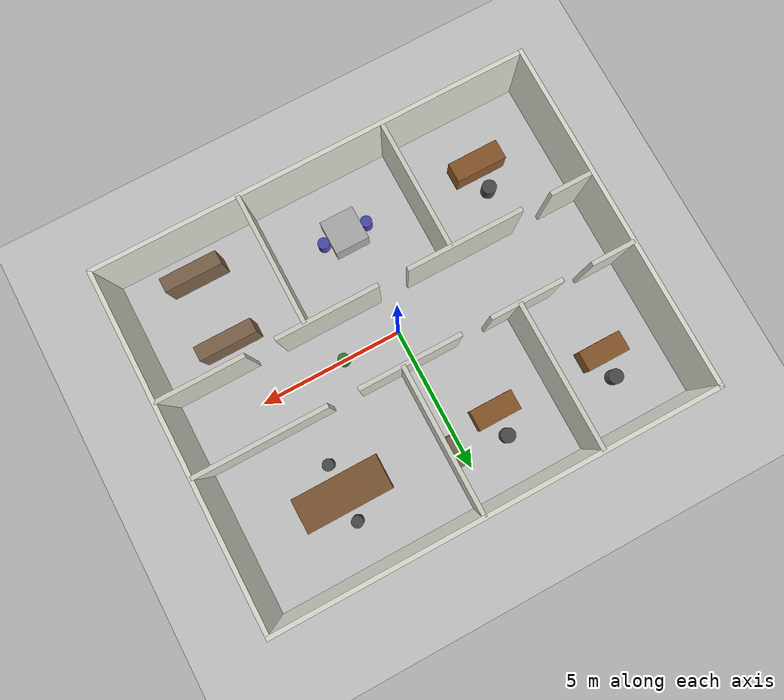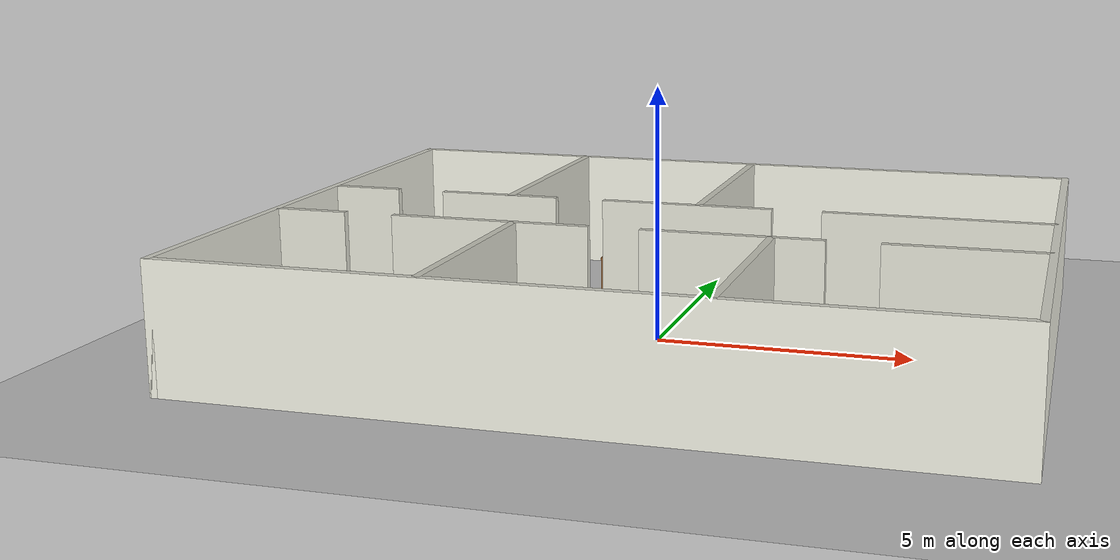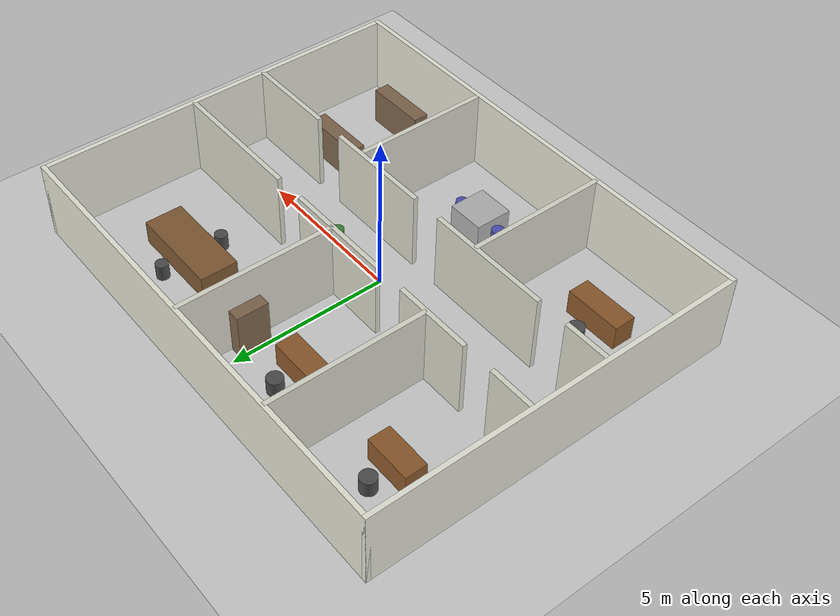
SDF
<?xml version="1.0"?>
<sdf version="1.6">
  <world name="office">

    <!-- Plugins -->
    <plugin filename="gz-sim-physics-system"
            name="gz::sim::systems::Physics"/>
    <plugin filename="gz-sim-user-commands-system"
            name="gz::sim::systems::UserCommands"/>
    <plugin filename="gz-sim-scene-broadcaster-system"
            name="gz::sim::systems::SceneBroadcaster"/>
    <plugin filename="gz-sim-sensors-system"
            name="gz::sim::systems::Sensors">
      <render_engine>ogre2</render_engine>
    </plugin>
    <plugin filename="gz-sim-imu-system"
            name="gz::sim::systems::Imu"/>

    <physics name="1ms" type="ode">
      <max_step_size>0.003</max_step_size>
      <real_time_factor>1.0</real_time_factor>
    </physics>

    <!-- Lighting -->
    <light name="sun" type="directional">
      <cast_shadows>false</cast_shadows>
      <pose>0 0 10 0 0 0</pose>
      <diffuse>0.9 0.9 0.9 1</diffuse>
      <specular>0.3 0.3 0.3 1</specular>
      <attenuation>
        <range>1000</range>
        <constant>0.9</constant>
        <linear>0.01</linear>
        <quadratic>0.001</quadratic>
      </attenuation>
      <direction>-0.5 0.1 -0.9</direction>
    </light>

    <!-- Ground plane -->
    <model name="ground_plane">
      <static>true</static>
      <link name="link">
        <collision name="collision">
          <geometry>
            <plane>
              <normal>0 0 1</normal>
              <size>100 100</size>
            </plane>
          </geometry>
        </collision>
        <visual name="visual">
          <geometry>
            <plane>
              <normal>0 0 1</normal>
              <size>100 100</size>
            </plane>
          </geometry>
          <material>
            <ambient>0.8 0.8 0.8 1</ambient>
            <diffuse>0.8 0.8 0.8 1</diffuse>
          </material>
        </visual>
      </link>
    </model>

    <scene>
      <shadows>false</shadows>
      <ambient>0.4 0.4 0.4 1</ambient>
    </scene>

    <!-- Walls model — pose offsets all child links by (-7.5, -5.75) -->
    <model name="office_walls">
      <static>true</static>
      <pose>-7.5 -5.75 0 0 0 0</pose>

      <!-- ===== OUTER WALLS ===== -->

      <!-- South wall (y=0 in model frame) -->
      <link name="wall_south">
        <pose>7.5 0 1.25 0 0 0</pose>
        <collision name="collision">
          <geometry><box><size>15.15 0.15 2.5</size></box></geometry>
        </collision>
        <visual name="visual">
          <geometry><box><size>15.15 0.15 2.5</size></box></geometry>
          <material><ambient>0.9 0.9 0.85 1</ambient><diffuse>0.9 0.9 0.85 1</diffuse></material>
        </visual>
      </link>

      <!-- North wall (y=12) -->
      <link name="wall_north">
        <pose>7.5 12 1.25 0 0 0</pose>
        <collision name="collision">
          <geometry><box><size>15.15 0.15 2.5</size></box></geometry>
        </collision>
        <visual name="visual">
          <geometry><box><size>15.15 0.15 2.5</size></box></geometry>
          <material><ambient>0.9 0.9 0.85 1</ambient><diffuse>0.9 0.9 0.85 1</diffuse></material>
        </visual>
      </link>

      <!-- West wall (x=0) -->
      <link name="wall_west">
        <pose>0 6 1.25 0 0 0</pose>
        <collision name="collision">
          <geometry><box><size>0.15 12.15 2.5</size></box></geometry>
        </collision>
        <visual name="visual">
          <geometry><box><size>0.15 12.15 2.5</size></box></geometry>
          <material><ambient>0.9 0.9 0.85 1</ambient><diffuse>0.9 0.9 0.85 1</diffuse></material>
        </visual>
      </link>

      <!-- East wall (x=15) -->
      <link name="wall_east">
        <pose>15 6 1.25 0 0 0</pose>
        <collision name="collision">
          <geometry><box><size>0.15 12.15 2.5</size></box></geometry>
        </collision>
        <visual name="visual">
          <geometry><box><size>0.15 12.15 2.5</size></box></geometry>
          <material><ambient>0.9 0.9 0.85 1</ambient><diffuse>0.9 0.9 0.85 1</diffuse></material>
        </visual>
      </link>

      <!-- ===== CORRIDOR WALLS (horizontal dividers) ===== -->

      <!-- South corridor wall (y=4.5) — with door gaps -->
      <link name="corridor_south_seg1">
        <pose>0.75 4.5 1.25 0 0 0</pose>
        <collision name="collision">
          <geometry><box><size>1.5 0.15 2.5</size></box></geometry>
        </collision>
        <visual name="visual">
          <geometry><box><size>1.5 0.15 2.5</size></box></geometry>
          <material><ambient>0.85 0.85 0.8 1</ambient><diffuse>0.85 0.85 0.8 1</diffuse></material>
        </visual>
      </link>
      <link name="corridor_south_seg2">
        <pose>4.5 4.5 1.25 0 0 0</pose>
        <collision name="collision">
          <geometry><box><size>4.0 0.15 2.5</size></box></geometry>
        </collision>
        <visual name="visual">
          <geometry><box><size>4.0 0.15 2.5</size></box></geometry>
          <material><ambient>0.85 0.85 0.8 1</ambient><diffuse>0.85 0.85 0.8 1</diffuse></material>
        </visual>
      </link>
      <link name="corridor_south_seg3">
        <pose>9.25 4.5 1.25 0 0 0</pose>
        <collision name="collision">
          <geometry><box><size>3.5 0.15 2.5</size></box></geometry>
        </collision>
        <visual name="visual">
          <geometry><box><size>3.5 0.15 2.5</size></box></geometry>
          <material><ambient>0.85 0.85 0.8 1</ambient><diffuse>0.85 0.85 0.8 1</diffuse></material>
        </visual>
      </link>
      <link name="corridor_south_seg4">
        <pose>13.5 4.5 1.25 0 0 0</pose>
        <collision name="collision">
          <geometry><box><size>3.0 0.15 2.5</size></box></geometry>
        </collision>
        <visual name="visual">
          <geometry><box><size>3.0 0.15 2.5</size></box></geometry>
          <material><ambient>0.85 0.85 0.8 1</ambient><diffuse>0.85 0.85 0.8 1</diffuse></material>
        </visual>
      </link>

      <!-- North corridor wall (y=7) — with door gaps -->
      <link name="corridor_north_seg1">
        <pose>0.75 7 1.25 0 0 0</pose>
        <collision name="collision">
          <geometry><box><size>1.5 0.15 2.5</size></box></geometry>
        </collision>
        <visual name="visual">
          <geometry><box><size>1.5 0.15 2.5</size></box></geometry>
          <material><ambient>0.85 0.85 0.8 1</ambient><diffuse>0.85 0.85 0.8 1</diffuse></material>
        </visual>
      </link>
      <link name="corridor_north_seg2">
        <pose>3.75 7 1.25 0 0 0</pose>
        <collision name="collision">
          <geometry><box><size>2.5 0.15 2.5</size></box></geometry>
        </collision>
        <visual name="visual">
          <geometry><box><size>2.5 0.15 2.5</size></box></geometry>
          <material><ambient>0.85 0.85 0.8 1</ambient><diffuse>0.85 0.85 0.8 1</diffuse></material>
        </visual>
      </link>
      <link name="corridor_north_seg3">
        <pose>7.75 7 1.25 0 0 0</pose>
        <collision name="collision">
          <geometry><box><size>3.5 0.15 2.5</size></box></geometry>
        </collision>
        <visual name="visual">
          <geometry><box><size>3.5 0.15 2.5</size></box></geometry>
          <material><ambient>0.85 0.85 0.8 1</ambient><diffuse>0.85 0.85 0.8 1</diffuse></material>
        </visual>
      </link>
      <link name="corridor_north_seg4">
        <pose>12.75 7 1.25 0 0 0</pose>
        <collision name="collision">
          <geometry><box><size>4.5 0.15 2.5</size></box></geometry>
        </collision>
        <visual name="visual">
          <geometry><box><size>4.5 0.15 2.5</size></box></geometry>
          <material><ambient>0.85 0.85 0.8 1</ambient><diffuse>0.85 0.85 0.8 1</diffuse></material>
        </visual>
      </link>

      <!-- ===== INTERIOR VERTICAL WALLS ===== -->

      <link name="div_bottom_1">
        <pose>5 2.25 1.25 0 0 0</pose>
        <collision name="collision">
          <geometry><box><size>0.15 4.5 2.5</size></box></geometry>
        </collision>
        <visual name="visual">
          <geometry><box><size>0.15 4.5 2.5</size></box></geometry>
          <material><ambient>0.85 0.85 0.8 1</ambient><diffuse>0.85 0.85 0.8 1</diffuse></material>
        </visual>
      </link>

      <link name="div_bottom_2">
        <pose>10 2.25 1.25 0 0 0</pose>
        <collision name="collision">
          <geometry><box><size>0.15 4.5 2.5</size></box></geometry>
        </collision>
        <visual name="visual">
          <geometry><box><size>0.15 4.5 2.5</size></box></geometry>
          <material><ambient>0.85 0.85 0.8 1</ambient><diffuse>0.85 0.85 0.8 1</diffuse></material>
        </visual>
      </link>

      <link name="div_top_1">
        <pose>4 9.5 1.25 0 0 0</pose>
        <collision name="collision">
          <geometry><box><size>0.15 5.0 2.5</size></box></geometry>
        </collision>
        <visual name="visual">
          <geometry><box><size>0.15 5.0 2.5</size></box></geometry>
          <material><ambient>0.85 0.85 0.8 1</ambient><diffuse>0.85 0.85 0.8 1</diffuse></material>
        </visual>
      </link>

      <link name="div_top_2">
        <pose>8 9.5 1.25 0 0 0</pose>
        <collision name="collision">
          <geometry><box><size>0.15 5.0 2.5</size></box></geometry>
        </collision>
        <visual name="visual">
          <geometry><box><size>0.15 5.0 2.5</size></box></geometry>
          <material><ambient>0.85 0.85 0.8 1</ambient><diffuse>0.85 0.85 0.8 1</diffuse></material>
        </visual>
      </link>

    </model>

    <!-- ===== FURNITURE (all coords shifted by -7.5, -5.75) ===== -->

    <model name="reception_desk">
      <static>true</static>
      <pose>-5.0 -3.75 0.4 0 0 0</pose>
      <link name="link">
        <collision name="collision">
          <geometry><box><size>1.8 0.7 0.8</size></box></geometry>
        </collision>
        <visual name="visual">
          <geometry><box><size>1.8 0.7 0.8</size></box></geometry>
          <material><ambient>0.55 0.35 0.17 1</ambient><diffuse>0.55 0.35 0.17 1</diffuse></material>
        </visual>
      </link>
    </model>

    <model name="reception_chair">
      <static>true</static>
      <pose>-5.0 -2.85 0.25 0 0 0</pose>
      <link name="link">
        <collision name="collision">
          <geometry><cylinder><radius>0.25</radius><length>0.5</length></cylinder></geometry>
        </collision>
        <visual name="visual">
          <geometry><cylinder><radius>0.25</radius><length>0.5</length></cylinder></geometry>
          <material><ambient>0.2 0.2 0.2 1</ambient><diffuse>0.3 0.3 0.3 1</diffuse></material>
        </visual>
      </link>
    </model>

    <model name="kitchen_table">
      <static>true</static>
      <pose>0.0 -3.75 0.38 0 0 0</pose>
      <link name="link">
        <collision name="collision">
          <geometry><box><size>1.2 1.2 0.76</size></box></geometry>
        </collision>
        <visual name="visual">
          <geometry><box><size>1.2 1.2 0.76</size></box></geometry>
          <material><ambient>0.6 0.6 0.6 1</ambient><diffuse>0.7 0.7 0.7 1</diffuse></material>
        </visual>
      </link>
    </model>

    <model name="kitchen_chair1">
      <static>true</static>
      <pose>-0.8 -3.75 0.25 0 0 0</pose>
      <link name="link">
        <collision name="collision">
          <geometry><cylinder><radius>0.2</radius><length>0.5</length></cylinder></geometry>
        </collision>
        <visual name="visual">
          <geometry><cylinder><radius>0.2</radius><length>0.5</length></cylinder></geometry>
          <material><ambient>0.2 0.2 0.6 1</ambient><diffuse>0.3 0.3 0.7 1</diffuse></material>
        </visual>
      </link>
    </model>

    <model name="kitchen_chair2">
      <static>true</static>
      <pose>0.8 -3.75 0.25 0 0 0</pose>
      <link name="link">
        <collision name="collision">
          <geometry><cylinder><radius>0.2</radius><length>0.5</length></cylinder></geometry>
        </collision>
        <visual name="visual">
          <geometry><cylinder><radius>0.2</radius><length>0.5</length></cylinder></geometry>
          <material><ambient>0.2 0.2 0.6 1</ambient><diffuse>0.3 0.3 0.7 1</diffuse></material>
        </visual>
      </link>
    </model>

    <model name="storage_shelf1">
      <static>true</static>
      <pose>5.0 -4.75 0.6 0 0 0</pose>
      <link name="link">
        <collision name="collision">
          <geometry><box><size>2.0 0.5 1.2</size></box></geometry>
        </collision>
        <visual name="visual">
          <geometry><box><size>2.0 0.5 1.2</size></box></geometry>
          <material><ambient>0.4 0.3 0.2 1</ambient><diffuse>0.5 0.4 0.3 1</diffuse></material>
        </visual>
      </link>
    </model>

    <model name="storage_shelf2">
      <static>true</static>
      <pose>5.0 -2.25 0.6 0 0 0</pose>
      <link name="link">
        <collision name="collision">
          <geometry><box><size>2.0 0.5 1.2</size></box></geometry>
        </collision>
        <visual name="visual">
          <geometry><box><size>2.0 0.5 1.2</size></box></geometry>
          <material><ambient>0.4 0.3 0.2 1</ambient><diffuse>0.5 0.4 0.3 1</diffuse></material>
        </visual>
      </link>
    </model>

    <model name="office1_desk">
      <static>true</static>
      <pose>-5.5 3.75 0.38 0 0 0</pose>
      <link name="link">
        <collision name="collision">
          <geometry><box><size>1.5 0.7 0.76</size></box></geometry>
        </collision>
        <visual name="visual">
          <geometry><box><size>1.5 0.7 0.76</size></box></geometry>
          <material><ambient>0.55 0.35 0.17 1</ambient><diffuse>0.55 0.35 0.17 1</diffuse></material>
        </visual>
      </link>
    </model>

    <model name="office1_chair">
      <static>true</static>
      <pose>-5.5 4.65 0.25 0 0 0</pose>
      <link name="link">
        <collision name="collision">
          <geometry><cylinder><radius>0.25</radius><length>0.5</length></cylinder></geometry>
        </collision>
        <visual name="visual">
          <geometry><cylinder><radius>0.25</radius><length>0.5</length></cylinder></geometry>
          <material><ambient>0.2 0.2 0.2 1</ambient><diffuse>0.3 0.3 0.3 1</diffuse></material>
        </visual>
      </link>
    </model>

    <model name="office2_desk">
      <static>true</static>
      <pose>-1.5 3.75 0.38 0 0 0</pose>
      <link name="link">
        <collision name="collision">
          <geometry><box><size>1.5 0.7 0.76</size></box></geometry>
        </collision>
        <visual name="visual">
          <geometry><box><size>1.5 0.7 0.76</size></box></geometry>
          <material><ambient>0.55 0.35 0.17 1</ambient><diffuse>0.55 0.35 0.17 1</diffuse></material>
        </visual>
      </link>
    </model>

    <model name="office2_chair">
      <static>true</static>
      <pose>-1.5 4.65 0.25 0 0 0</pose>
      <link name="link">
        <collision name="collision">
          <geometry><cylinder><radius>0.25</radius><length>0.5</length></cylinder></geometry>
        </collision>
        <visual name="visual">
          <geometry><cylinder><radius>0.25</radius><length>0.5</length></cylinder></geometry>
          <material><ambient>0.2 0.2 0.2 1</ambient><diffuse>0.3 0.3 0.3 1</diffuse></material>
        </visual>
      </link>
    </model>

    <model name="office2_bookshelf">
      <static>true</static>
      <pose>0.2 4.25 0.75 0 0 0</pose>
      <link name="link">
        <collision name="collision">
          <geometry><box><size>0.4 1.0 1.5</size></box></geometry>
        </collision>
        <visual name="visual">
          <geometry><box><size>0.4 1.0 1.5</size></box></geometry>
          <material><ambient>0.4 0.3 0.2 1</ambient><diffuse>0.5 0.4 0.3 1</diffuse></material>
        </visual>
      </link>
    </model>

    <model name="meeting_table">
      <static>true</static>
      <pose>4.0 3.75 0.38 0 0 0</pose>
      <link name="link">
        <collision name="collision">
          <geometry><box><size>3.0 1.2 0.76</size></box></geometry>
        </collision>
        <visual name="visual">
          <geometry><box><size>3.0 1.2 0.76</size></box></geometry>
          <material><ambient>0.45 0.3 0.15 1</ambient><diffuse>0.5 0.35 0.2 1</diffuse></material>
        </visual>
      </link>
    </model>

    <model name="meeting_chair1">
      <static>true</static>
      <pose>2.8 3.75 0.25 0 0 0</pose>
      <link name="link">
        <collision name="collision">
          <geometry><cylinder><radius>0.2</radius><length>0.5</length></cylinder></geometry>
        </collision>
        <visual name="visual">
          <geometry><cylinder><radius>0.2</radius><length>0.5</length></cylinder></geometry>
          <material><ambient>0.2 0.2 0.2 1</ambient><diffuse>0.3 0.3 0.3 1</diffuse></material>
        </visual>
      </link>
    </model>

    <model name="meeting_chair2">
      <static>true</static>
      <pose>5.2 3.75 0.25 0 0 0</pose>
      <link name="link">
        <collision name="collision">
          <geometry><cylinder><radius>0.2</radius><length>0.5</length></cylinder></geometry>
        </collision>
        <visual name="visual">
          <geometry><cylinder><radius>0.2</radius><length>0.5</length></cylinder></geometry>
          <material><ambient>0.2 0.2 0.2 1</ambient><diffuse>0.3 0.3 0.3 1</diffuse></material>
        </visual>
      </link>
    </model>

    <model name="meeting_chair3">
      <static>true</static>
      <pose>4.0 2.75 0.25 0 0 0</pose>
      <link name="link">
        <collision name="collision">
          <geometry><cylinder><radius>0.2</radius><length>0.5</length></cylinder></geometry>
        </collision>
        <visual name="visual">
          <geometry><cylinder><radius>0.2</radius><length>0.5</length></cylinder></geometry>
          <material><ambient>0.2 0.2 0.2 1</ambient><diffuse>0.3 0.3 0.3 1</diffuse></material>
        </visual>
      </link>
    </model>

    <model name="meeting_chair4">
      <static>true</static>
      <pose>4.0 4.75 0.25 0 0 0</pose>
      <link name="link">
        <collision name="collision">
          <geometry><cylinder><radius>0.2</radius><length>0.5</length></cylinder></geometry>
        </collision>
        <visual name="visual">
          <geometry><cylinder><radius>0.2</radius><length>0.5</length></cylinder></geometry>
          <material><ambient>0.2 0.2 0.2 1</ambient><diffuse>0.3 0.3 0.3 1</diffuse></material>
        </visual>
      </link>
    </model>

    <!-- Corridor plant — offset from spawn point -->
    <model name="corridor_plant">
      <static>true</static>
      <pose>2.0 0.0 0.3 0 0 0</pose>
      <link name="link">
        <collision name="collision">
          <geometry><cylinder><radius>0.2</radius><length>0.6</length></cylinder></geometry>
        </collision>
        <visual name="visual">
          <geometry><cylinder><radius>0.2</radius><length>0.6</length></cylinder></geometry>
          <material><ambient>0.15 0.4 0.15 1</ambient><diffuse>0.2 0.5 0.2 1</diffuse></material>
        </visual>
      </link>
    </model>

  </world>
</sdf>
